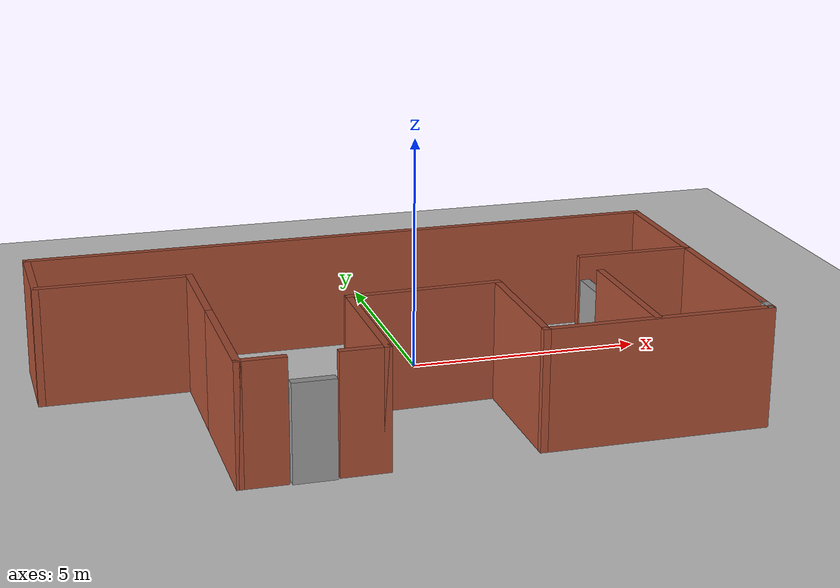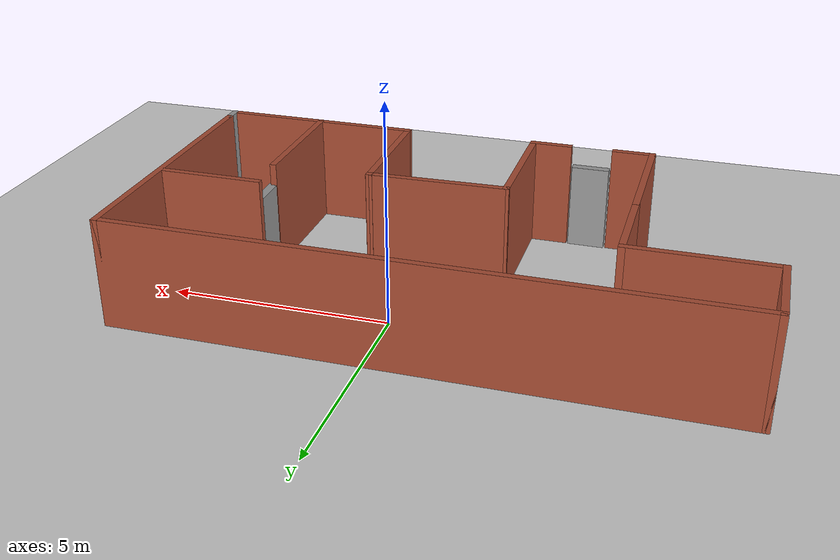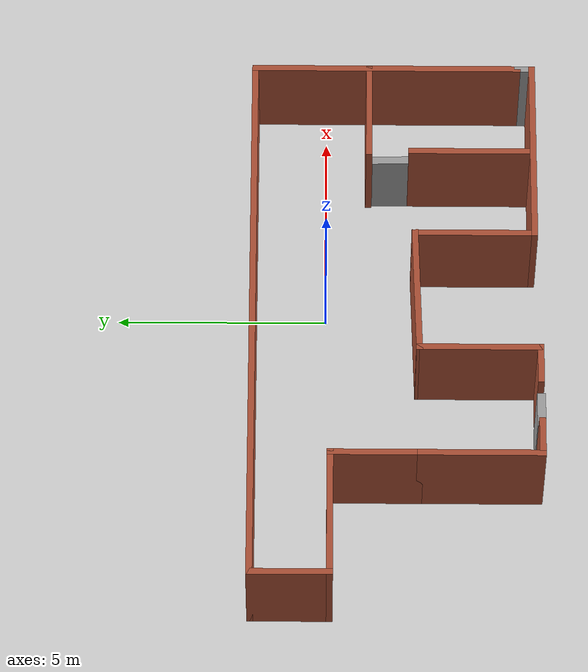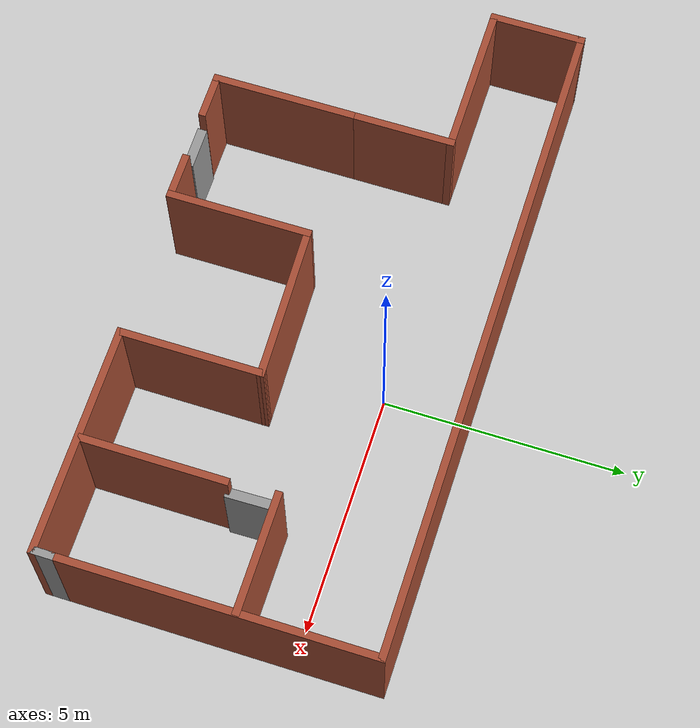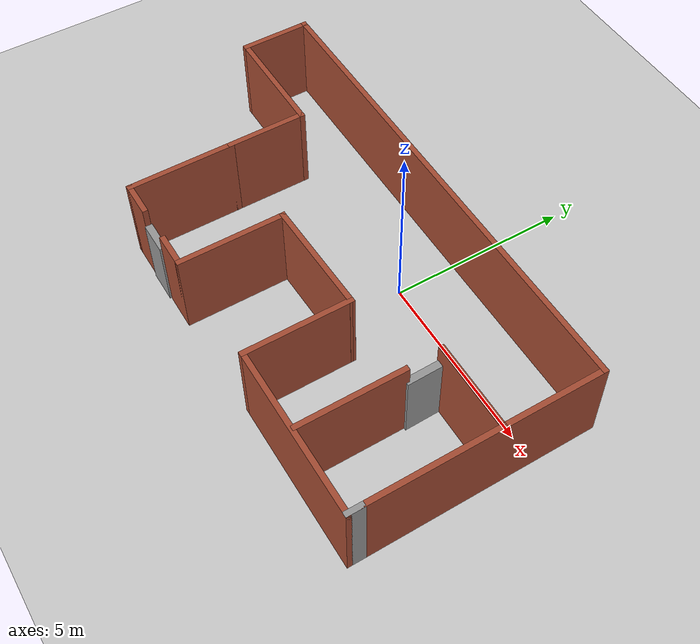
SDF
<sdf version="1.7">
 <world name="default">
  <light name="sun" type="directional">
   <pose>0 0 10 0 -0 0</pose>
   <diffuse>0.8 0.8 0.8 1</diffuse>
   <specular>0.2 0.2 0.2 1</specular>
   <attenuation>
    <range>1000</range>
    <constant>0.9</constant>
    <linear>0.01</linear>
    <quadratic>0.001</quadratic>
   </attenuation>
   <direction>-0.5 0.1 -0.9</direction>
   <spot><inner_angle>0</inner_angle><outer_angle>0</outer_angle><falloff>0</falloff></spot>
  </light>
  <model name="ground_plane">
   <static>1</static>
   <link name="link">
    <collision name="collision">
     <geometry><plane><normal>0 0 1</normal><size>100 100</size></plane></geometry>
     <surface>
      <contact><collide_bitmask>65535</collide_bitmask></contact>
      <friction><ode><mu>100</mu><mu2>50</mu2></ode></friction>
     </surface>
    </collision>
    <visual name="visual">
     <cast_shadows>0</cast_shadows>
     <geometry><plane><normal>0 0 1</normal><size>100 100</size></plane></geometry>
     <material>
      <script><uri>file://media/materials/scripts/gazebo.material</uri><name>Gazebo/Grey</name></script>
     </material>
    </visual>
   </link>
  </model>
  <gravity>0 0 -9.8</gravity>
  <magnetic_field>6e-06 2.3e-05 -4.2e-05</magnetic_field>
  <atmosphere type="adiabatic"/>
  <physics type="ode">
   <max_step_size>0.001</max_step_size>
   <real_time_factor>1</real_time_factor>
   <real_time_update_rate>1000</real_time_update_rate>
  </physics>
  <scene><ambient>0.4 0.4 0.4 1</ambient><background>0.7 0.7 0.7 1</background><shadows>1</shadows></scene>
  <spherical_coordinates>
   <surface_model>EARTH_WGS84</surface_model>
   <latitude_deg>0</latitude_deg>
   <longitude_deg>0</longitude_deg>
   <elevation>0</elevation>
   <heading_deg>0</heading_deg>
  </spherical_coordinates>
  <model name="testHouse">
   <pose>-1.09143 -1.47317 0 0 -0 0</pose>
   <link name="Door_1">
    <collision name="Door_1_Collision">
     <geometry><box><size>0.869583 0.2 2</size></box></geometry>
     <pose>0 0 1 0 -0 0</pose>
    </collision>
    <visual name="Door_1_Visual">
     <pose>0 0 1 0 -0 0</pose>
     <geometry><box><size>0.869583 0.2 2</size></box></geometry>
     <material>
      <script><uri>file://media/materials/scripts/gazebo.material</uri><name>Gazebo/Grey</name></script>
     </material>
    </visual>
    <pose>-2.29888 -3.59683 0 0 -0 0</pose>
   </link>
   <link name="Door_2">
    <collision name="Door_2_Collision">
     <geometry><box><size>0.976044 0.2 2</size></box></geometry>
     <pose>0 0 1 0 -0 0</pose>
    </collision>
    <visual name="Door_2_Visual">
     <pose>0 0 1 0 -0 0</pose>
     <geometry><box><size>0.976044 0.2 2</size></box></geometry>
     <material>
      <script><uri>file://media/materials/scripts/gazebo.material</uri><name>Gazebo/Grey</name></script>
     </material>
    </visual>
    <pose>4.49943 -0.098819 0 0 -0 -1.55278</pose>
   </link>
   <link name="Wall_10">
    <collision name="Wall_10_Collision">
     <geometry><box><size>2.25 0.15 2.5</size></box></geometry>
     <pose>0 0 1.25 0 -0 0</pose>
    </collision>
    <visual name="Wall_10_Visual">
     <pose>0 0 1.25 0 -0 0</pose>
     <geometry><box><size>2.25 0.15 2.5</size></box></geometry>
     <material>
      <script><uri>file://media/materials/scripts/gazebo.material</uri><name>Gazebo/Bricks</name></script>
      <ambient>1 1 1 1</ambient>
     </material>
     <meta><layer>0</layer></meta>
    </visual>
    <pose>-3.7 0.310089 0 0 -0 1.5708</pose>
   </link>
   <link name="Wall_11">
    <collision name="Wall_11_Collision">
     <geometry><box><size>3.25 0.15 2.5</size></box></geometry>
     <pose>0 0 1.25 0 -0 0</pose>
    </collision>
    <visual name="Wall_11_Visual">
     <pose>0 0 1.25 0 -0 0</pose>
     <geometry><box><size>3.25 0.15 2.5</size></box></geometry>
     <material>
      <script><uri>file://media/materials/scripts/gazebo.material</uri><name>Gazebo/Bricks</name></script>
      <ambient>1 1 1 1</ambient>
     </material>
     <meta><layer>0</layer></meta>
    </visual>
    <pose>-5.25 1.36009 0 0 -0 3.14159</pose>
   </link>
   <link name="Wall_12">
    <collision name="Wall_12_Collision">
     <geometry><box><size>2 0.15 2.5</size></box></geometry>
     <pose>0 0 1.25 0 -0 0</pose>
    </collision>
    <visual name="Wall_12_Visual">
     <pose>0 0 1.25 0 -0 0</pose>
     <geometry><box><size>2 0.15 2.5</size></box></geometry>
     <material>
      <script><uri>file://media/materials/scripts/gazebo.material</uri><name>Gazebo/Bricks</name></script>
      <ambient>1 1 1 1</ambient>
     </material>
     <meta><layer>0</layer></meta>
    </visual>
    <pose>-6.8 2.28509 0 0 -0 1.5708</pose>
   </link>
   <link name="Wall_13">
    <collision name="Wall_13_Collision">
     <geometry><box><size>13.75 0.15 2.5</size></box></geometry>
     <pose>0 0 1.25 0 -0 0</pose>
    </collision>
    <visual name="Wall_13_Visual">
     <pose>0 0 1.25 0 -0 0</pose>
     <geometry><box><size>13.75 0.15 2.5</size></box></geometry>
     <material>
      <script><uri>file://media/materials/scripts/gazebo.material</uri><name>Gazebo/Bricks</name></script>
      <ambient>1 1 1 1</ambient>
     </material>
     <meta><layer>0</layer></meta>
    </visual>
    <pose>-0 3.21009 0 0 -0 0</pose>
   </link>
   <link name="Wall_14">
    <collision name="Wall_14_Collision">
     <geometry><box><size>6.5 0.15 2.5</size></box></geometry>
     <pose>0 0 1.25 0 -0 0</pose>
    </collision>
    <visual name="Wall_14_Visual">
     <pose>0 0 1.25 0 -0 0</pose>
     <geometry><box><size>6.5 0.15 2.5</size></box></geometry>
     <material>
      <script><uri>file://media/materials/scripts/gazebo.material</uri><name>Gazebo/Bricks</name></script>
      <ambient>1 1 1 1</ambient>
     </material>
     <meta><layer>0</layer></meta>
    </visual>
    <pose>6.8 0.035089 0 0 -0 -1.5708</pose>
   </link>
   <link name="Wall_15">
    <collision name="Wall_15_Collision">
     <geometry><box><size>0.5 0.15 2.5</size></box></geometry>
     <pose>0 0 1.25 0 -0 0</pose>
    </collision>
    <visual name="Wall_15_Visual">
     <pose>0 0 1.25 0 -0 0</pose>
     <geometry><box><size>0.5 0.15 2.5</size></box></geometry>
     <material>
      <script><uri>file://media/materials/scripts/gazebo.material</uri><name>Gazebo/Grey</name></script>
      <ambient>1 1 1 1</ambient>
     </material>
     <meta><layer>0</layer></meta>
    </visual>
    <pose>6.8 -3.31491 0 0 -0 -1.5708</pose>
   </link>
   <link name="Wall_16">
    <collision name="Wall_16_Collision">
     <geometry><box><size>4.75 0.15 2.5</size></box></geometry>
     <pose>0 0 1.25 0 -0 0</pose>
    </collision>
    <visual name="Wall_16_Visual">
     <pose>0 0 1.25 0 -0 0</pose>
     <geometry><box><size>4.75 0.15 2.5</size></box></geometry>
     <material>
      <script><uri>file://media/materials/scripts/gazebo.material</uri><name>Gazebo/Bricks</name></script>
      <ambient>1 1 1 1</ambient>
     </material>
     <meta><layer>0</layer></meta>
    </visual>
    <pose>4.5 -3.48991 0 0 -0 3.14159</pose>
   </link>
   <link name="Wall_17">
    <collision name="Wall_17_Collision">
     <geometry><box><size>3 0.15 2.5</size></box></geometry>
     <pose>0 0 1.25 0 -0 0</pose>
    </collision>
    <visual name="Wall_17_Visual">
     <pose>0 0 1.25 0 -0 0</pose>
     <geometry><box><size>3 0.15 2.5</size></box></geometry>
     <material>
      <script><uri>file://media/materials/scripts/gazebo.material</uri><name>Gazebo/Bricks</name></script>
      <ambient>1 1 1 1</ambient>
     </material>
     <meta><layer>0</layer></meta>
    </visual>
    <pose>2.2 -2.06491 0 0 -0 1.5708</pose>
   </link>
   <link name="Wall_18">
    <collision name="Wall_18_Collision">
     <geometry><box><size>3.25391 0.15 2.5</size></box></geometry>
     <pose>0 0 1.25 0 -0 0</pose>
    </collision>
    <visual name="Wall_18_Visual">
     <pose>0 0 1.25 0 -0 0</pose>
     <geometry><box><size>3.25391 0.15 2.5</size></box></geometry>
     <material>
      <script><uri>file://media/materials/scripts/gazebo.material</uri><name>Gazebo/Bricks</name></script>
      <ambient>1 1 1 1</ambient>
     </material>
     <meta><layer>0</layer></meta>
    </visual>
    <pose>0.648721 -0.685767 0 0 -0 -3.11204</pose>
   </link>
   <link name="Wall_2">
    <collision name="Wall_2_Collision">
     <geometry><box><size>3 0.15 2.5</size></box></geometry>
     <pose>0 0 1.25 0 -0 0</pose>
    </collision>
    <visual name="Wall_2_Visual">
     <pose>0 0 1.25 0 -0 0</pose>
     <geometry><box><size>3 0.15 2.5</size></box></geometry>
     <material>
      <script><uri>file://media/materials/scripts/gazebo.material</uri><name>Gazebo/Bricks</name></script>
      <ambient>1 1 1 1</ambient>
     </material>
     <meta><layer>0</layer></meta>
    </visual>
    <pose>-3.7 -2.16491 0 0 -0 -1.5708</pose>
   </link>
   <link name="Wall_20">
    <collision name="Wall_20_Collision">
     <geometry><box><size>2.5 0.15 2.5</size></box></geometry>
     <pose>0 0 1.25 0 -0 0</pose>
    </collision>
    <visual name="Wall_20_Visual">
     <pose>0 0 1.25 0 -0 0</pose>
     <geometry><box><size>2.5 0.15 2.5</size></box></geometry>
     <material>
      <script><uri>file://media/materials/scripts/gazebo.material</uri><name>Gazebo/Bricks</name></script>
      <ambient>1 1 1 1</ambient>
     </material>
     <meta><layer>0</layer></meta>
    </visual>
    <pose>5.60574 0.448696 0 0 -0 3.14159</pose>
   </link>
   <link name="Wall_22">
    <collision name="Wall_22_Collision">
     <geometry><box><size>3 0.15 2.5</size></box></geometry>
     <pose>0 0 1.25 0 -0 0</pose>
    </collision>
    <visual name="Wall_22_Visual">
     <pose>0 0 1.25 0 -0 0</pose>
     <geometry><box><size>3 0.15 2.5</size></box></geometry>
     <material>
      <script><uri>file://media/materials/scripts/gazebo.material</uri><name>Gazebo/Bricks</name></script>
      <ambient>1 1 1 1</ambient>
     </material>
     <meta><layer>0</layer></meta>
    </visual>
    <pose>4.46901 -1.99529 0 0 -0 -1.5708</pose>
   </link>
   <link name="Wall_4">
    <collision name="Wall_4_Collision">
     <geometry><box><size>1 0.15 2.5</size></box></geometry>
     <pose>0 0 1.25 0 -0 0</pose>
    </collision>
    <visual name="Wall_4_Visual">
     <pose>0 0 1.25 0 -0 0</pose>
     <geometry><box><size>1 0.15 2.5</size></box></geometry>
     <material>
      <script><uri>file://media/materials/scripts/gazebo.material</uri><name>Gazebo/Bricks</name></script>
      <ambient>1 1 1 1</ambient>
     </material>
     <meta><layer>0</layer></meta>
    </visual>
    <pose>-3.275 -3.58991 0 0 -0 0</pose>
   </link>
   <link name="Wall_6">
    <collision name="Wall_6_Collision">
     <geometry><box><size>1 0.15 2.5</size></box></geometry>
     <pose>0 0 1.25 0 -0 0</pose>
    </collision>
    <visual name="Wall_6_Visual">
     <pose>0 0 1.25 0 -0 0</pose>
     <geometry><box><size>1 0.15 2.5</size></box></geometry>
     <material>
      <script><uri>file://media/materials/scripts/gazebo.material</uri><name>Gazebo/Bricks</name></script>
      <ambient>1 1 1 1</ambient>
     </material>
     <meta><layer>0</layer></meta>
    </visual>
    <pose>-1.32756 -3.58162 0 0 -0 3.14159</pose>
   </link>
   <link name="Wall_8">
    <collision name="Wall_8_Collision">
     <geometry><box><size>3 0.15 2.5</size></box></geometry>
     <pose>0 0 1.25 0 -0 0</pose>
    </collision>
    <visual name="Wall_8_Visual">
     <pose>0 0 1.25 0 -0 0</pose>
     <geometry><box><size>3 0.15 2.5</size></box></geometry>
     <material>
      <script><uri>file://media/materials/scripts/gazebo.material</uri><name>Gazebo/Bricks</name></script>
      <ambient>1 1 1 1</ambient>
     </material>
     <meta><layer>0</layer></meta>
    </visual>
    <pose>-0.902557 -2.15662 0 0 -0 1.5708</pose>
   </link>
   <static>1</static>
  </model>
 </world>
</sdf>
